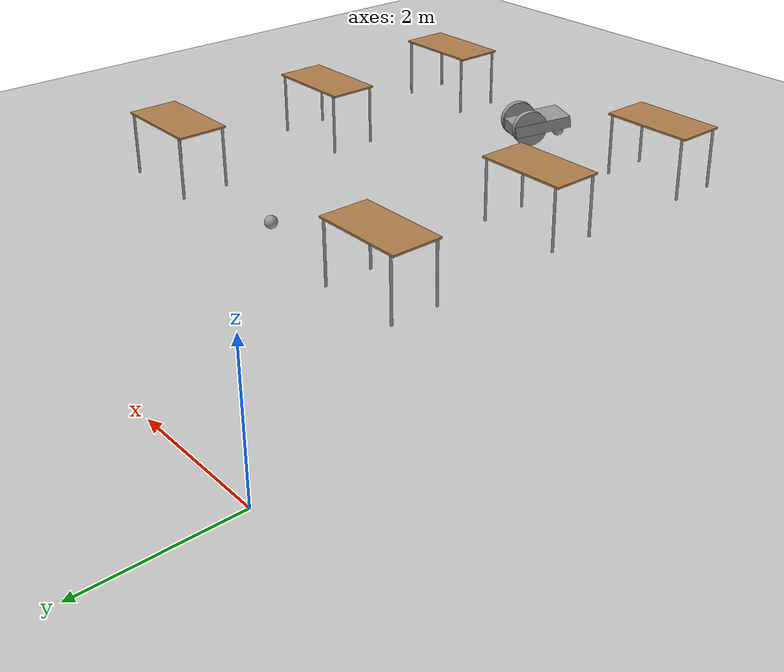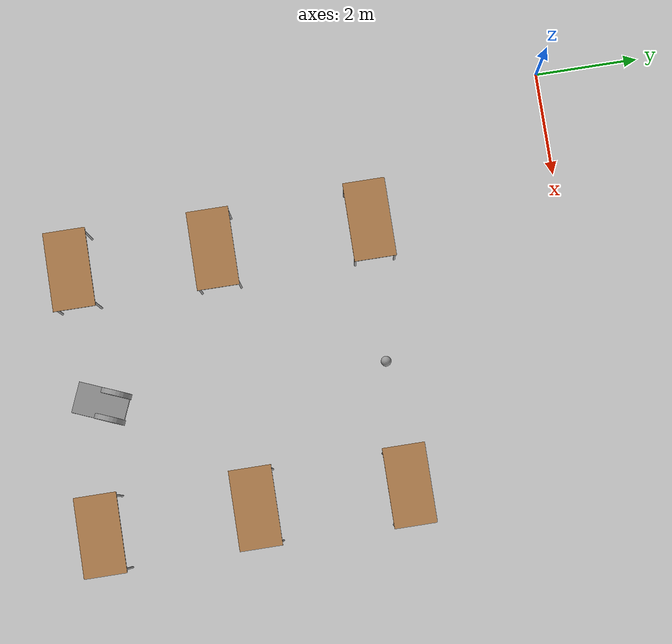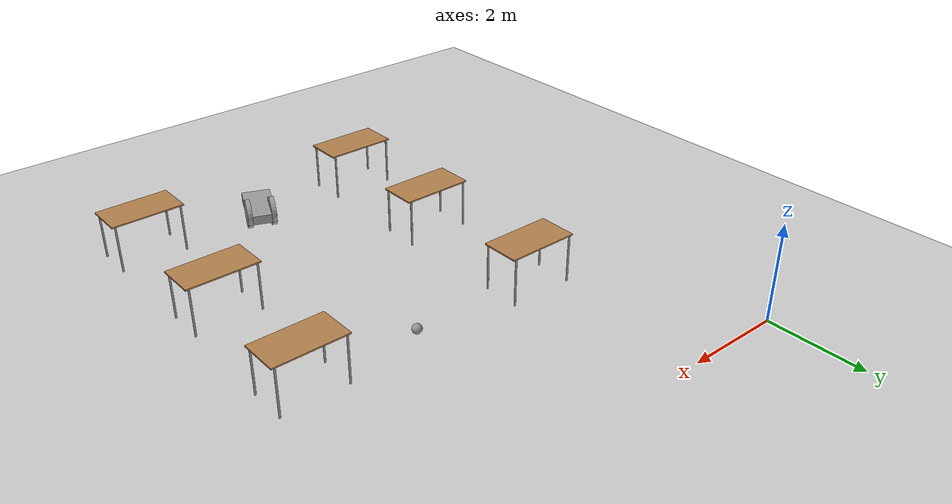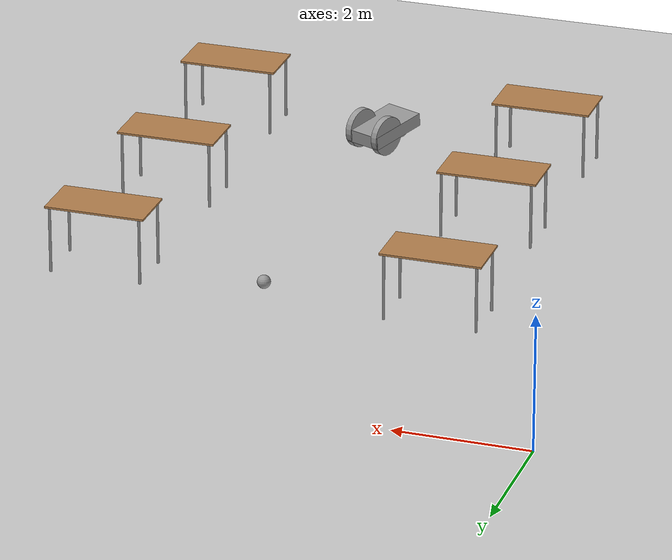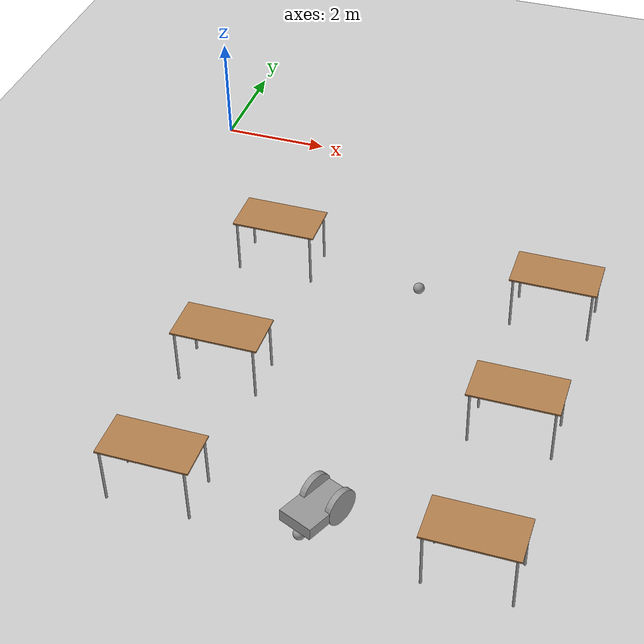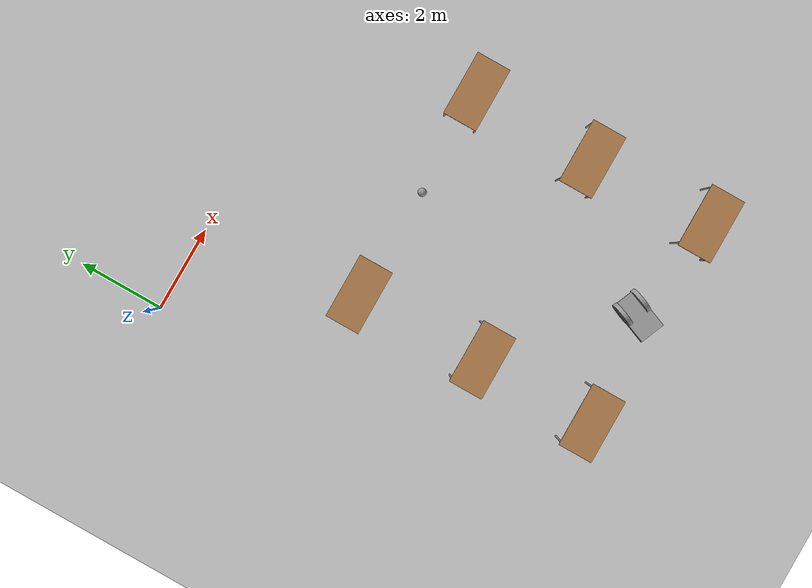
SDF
<sdf version="1.6">
 <world name="default">
  <model name="ground_plane">
   <static>1</static>
   <link name="link">
    <collision name="collision">
     <geometry><plane><normal>0 0 1</normal><size>100 100</size></plane></geometry>
     <surface><friction><ode><mu>100</mu><mu2>50</mu2></ode></friction></surface>
    </collision>
    <visual name="visual">
     <cast_shadows>0</cast_shadows>
     <geometry><plane><normal>0 0 1</normal><size>100 100</size></plane></geometry>
     <material>
      <script><uri>file://media/materials/scripts/gazebo.material</uri><name>Gazebo/Grey</name></script>
     </material>
    </visual>
   </link>
  </model>
  <model name="table_clone_clone_3">
   <static>1</static>
   <link name="link">
    <collision name="surface">
     <pose>0 0 1 0 -0 0</pose>
     <geometry><box><size>1.5 0.8 0.03</size></box></geometry>
     <surface><friction><ode><mu>0.6</mu><mu2>0.6</mu2></ode></friction></surface>
    </collision>
    <visual name="visual1">
     <pose>0 0 1 0 -0 0</pose>
     <geometry><box><size>1.5 0.8 0.03</size></box></geometry>
     <material>
      <script><uri>file://media/materials/scripts/gazebo.material</uri><name>Gazebo/Wood</name></script>
     </material>
    </visual>
    <collision name="front_left_leg">
     <pose>0.68 0.38 0.5 0 -0 0</pose>
     <geometry><cylinder><radius>0.02</radius><length>1</length></cylinder></geometry>
    </collision>
    <visual name="front_left_leg">
     <pose>0.68 0.38 0.5 0 -0 0</pose>
     <geometry><cylinder><radius>0.02</radius><length>1</length></cylinder></geometry>
     <material>
      <script><uri>file://media/materials/scripts/gazebo.material</uri><name>Gazebo/Grey</name></script>
     </material>
    </visual>
    <collision name="front_right_leg">
     <pose>0.68 -0.38 0.5 0 -0 0</pose>
     <geometry><cylinder><radius>0.02</radius><length>1</length></cylinder></geometry>
    </collision>
    <visual name="front_right_leg">
     <pose>0.68 -0.38 0.5 0 -0 0</pose>
     <geometry><cylinder><radius>0.02</radius><length>1</length></cylinder></geometry>
     <material>
      <script><uri>file://media/materials/scripts/gazebo.material</uri><name>Gazebo/Grey</name></script>
     </material>
    </visual>
    <collision name="back_right_leg">
     <pose>-0.68 -0.38 0.5 0 -0 0</pose>
     <geometry><cylinder><radius>0.02</radius><length>1</length></cylinder></geometry>
    </collision>
    <visual name="back_right_leg">
     <pose>-0.68 -0.38 0.5 0 -0 0</pose>
     <geometry><cylinder><radius>0.02</radius><length>1</length></cylinder></geometry>
     <material>
      <script><uri>file://media/materials/scripts/gazebo.material</uri><name>Gazebo/Grey</name></script>
     </material>
    </visual>
    <collision name="back_left_leg">
     <pose>-0.68 0.38 0.5 0 -0 0</pose>
     <geometry><cylinder><radius>0.02</radius><length>1</length></cylinder></geometry>
    </collision>
    <visual name="back_left_leg">
     <pose>-0.68 0.38 0.5 0 -0 0</pose>
     <geometry><cylinder><radius>0.02</radius><length>1</length></cylinder></geometry>
     <material>
      <script><uri>file://media/materials/scripts/gazebo.material</uri><name>Gazebo/Grey</name></script>
     </material>
    </visual>
   </link>
   <pose>2.5522 -9.40203 0 0 -0 0</pose>
  </model>
  <model name="table_clone_clone_4">
   <static>1</static>
   <link name="link">
    <collision name="surface">
     <pose>0 0 1 0 -0 0</pose>
     <geometry><box><size>1.5 0.8 0.03</size></box></geometry>
     <surface><friction><ode><mu>0.6</mu><mu2>0.6</mu2></ode></friction></surface>
    </collision>
    <visual name="visual1">
     <pose>0 0 1 0 -0 0</pose>
     <geometry><box><size>1.5 0.8 0.03</size></box></geometry>
     <material>
      <script><uri>file://media/materials/scripts/gazebo.material</uri><name>Gazebo/Wood</name></script>
     </material>
    </visual>
    <collision name="front_left_leg">
     <pose>0.68 0.38 0.5 0 -0 0</pose>
     <geometry><cylinder><radius>0.02</radius><length>1</length></cylinder></geometry>
    </collision>
    <visual name="front_left_leg">
     <pose>0.68 0.38 0.5 0 -0 0</pose>
     <geometry><cylinder><radius>0.02</radius><length>1</length></cylinder></geometry>
     <material>
      <script><uri>file://media/materials/scripts/gazebo.material</uri><name>Gazebo/Grey</name></script>
     </material>
    </visual>
    <collision name="front_right_leg">
     <pose>0.68 -0.38 0.5 0 -0 0</pose>
     <geometry><cylinder><radius>0.02</radius><length>1</length></cylinder></geometry>
    </collision>
    <visual name="front_right_leg">
     <pose>0.68 -0.38 0.5 0 -0 0</pose>
     <geometry><cylinder><radius>0.02</radius><length>1</length></cylinder></geometry>
     <material>
      <script><uri>file://media/materials/scripts/gazebo.material</uri><name>Gazebo/Grey</name></script>
     </material>
    </visual>
    <collision name="back_right_leg">
     <pose>-0.68 -0.38 0.5 0 -0 0</pose>
     <geometry><cylinder><radius>0.02</radius><length>1</length></cylinder></geometry>
    </collision>
    <visual name="back_right_leg">
     <pose>-0.68 -0.38 0.5 0 -0 0</pose>
     <geometry><cylinder><radius>0.02</radius><length>1</length></cylinder></geometry>
     <material>
      <script><uri>file://media/materials/scripts/gazebo.material</uri><name>Gazebo/Grey</name></script>
     </material>
    </visual>
    <collision name="back_left_leg">
     <pose>-0.68 0.38 0.5 0 -0 0</pose>
     <geometry><cylinder><radius>0.02</radius><length>1</length></cylinder></geometry>
    </collision>
    <visual name="back_left_leg">
     <pose>-0.68 0.38 0.5 0 -0 0</pose>
     <geometry><cylinder><radius>0.02</radius><length>1</length></cylinder></geometry>
     <material>
      <script><uri>file://media/materials/scripts/gazebo.material</uri><name>Gazebo/Grey</name></script>
     </material>
    </visual>
   </link>
   <pose>2.57285 -6.68685 0 0 -0 0</pose>
  </model>
  <model name="table_clone_clone_5">
   <static>1</static>
   <link name="link">
    <collision name="surface">
     <pose>0 0 1 0 -0 0</pose>
     <geometry><box><size>1.5 0.8 0.03</size></box></geometry>
     <surface><friction><ode><mu>0.6</mu><mu2>0.6</mu2></ode></friction></surface>
    </collision>
    <visual name="visual1">
     <pose>0 0 1 0 -0 0</pose>
     <geometry><box><size>1.5 0.8 0.03</size></box></geometry>
     <material>
      <script><uri>file://media/materials/scripts/gazebo.material</uri><name>Gazebo/Wood</name></script>
     </material>
    </visual>
    <collision name="front_left_leg">
     <pose>0.68 0.38 0.5 0 -0 0</pose>
     <geometry><cylinder><radius>0.02</radius><length>1</length></cylinder></geometry>
    </collision>
    <visual name="front_left_leg">
     <pose>0.68 0.38 0.5 0 -0 0</pose>
     <geometry><cylinder><radius>0.02</radius><length>1</length></cylinder></geometry>
     <material>
      <script><uri>file://media/materials/scripts/gazebo.material</uri><name>Gazebo/Grey</name></script>
     </material>
    </visual>
    <collision name="front_right_leg">
     <pose>0.68 -0.38 0.5 0 -0 0</pose>
     <geometry><cylinder><radius>0.02</radius><length>1</length></cylinder></geometry>
    </collision>
    <visual name="front_right_leg">
     <pose>0.68 -0.38 0.5 0 -0 0</pose>
     <geometry><cylinder><radius>0.02</radius><length>1</length></cylinder></geometry>
     <material>
      <script><uri>file://media/materials/scripts/gazebo.material</uri><name>Gazebo/Grey</name></script>
     </material>
    </visual>
    <collision name="back_right_leg">
     <pose>-0.68 -0.38 0.5 0 -0 0</pose>
     <geometry><cylinder><radius>0.02</radius><length>1</length></cylinder></geometry>
    </collision>
    <visual name="back_right_leg">
     <pose>-0.68 -0.38 0.5 0 -0 0</pose>
     <geometry><cylinder><radius>0.02</radius><length>1</length></cylinder></geometry>
     <material>
      <script><uri>file://media/materials/scripts/gazebo.material</uri><name>Gazebo/Grey</name></script>
     </material>
    </visual>
    <collision name="back_left_leg">
     <pose>-0.68 0.38 0.5 0 -0 0</pose>
     <geometry><cylinder><radius>0.02</radius><length>1</length></cylinder></geometry>
    </collision>
    <visual name="back_left_leg">
     <pose>-0.68 0.38 0.5 0 -0 0</pose>
     <geometry><cylinder><radius>0.02</radius><length>1</length></cylinder></geometry>
     <material>
      <script><uri>file://media/materials/scripts/gazebo.material</uri><name>Gazebo/Grey</name></script>
     </material>
    </visual>
   </link>
   <pose>2.48664 -3.69437 0 0 -0 0</pose>
  </model>
  <model name="table_clone_clone_6">
   <static>1</static>
   <link name="link">
    <collision name="surface">
     <pose>0 0 1 0 -0 0</pose>
     <geometry><box><size>1.5 0.8 0.03</size></box></geometry>
     <surface><friction><ode><mu>0.6</mu><mu2>0.6</mu2></ode></friction></surface>
    </collision>
    <visual name="visual1">
     <pose>0 0 1 0 -0 0</pose>
     <geometry><box><size>1.5 0.8 0.03</size></box></geometry>
     <material>
      <script><uri>file://media/materials/scripts/gazebo.material</uri><name>Gazebo/Wood</name></script>
     </material>
    </visual>
    <collision name="front_left_leg">
     <pose>0.68 0.38 0.5 0 -0 0</pose>
     <geometry><cylinder><radius>0.02</radius><length>1</length></cylinder></geometry>
    </collision>
    <visual name="front_left_leg">
     <pose>0.68 0.38 0.5 0 -0 0</pose>
     <geometry><cylinder><radius>0.02</radius><length>1</length></cylinder></geometry>
     <material>
      <script><uri>file://media/materials/scripts/gazebo.material</uri><name>Gazebo/Grey</name></script>
     </material>
    </visual>
    <collision name="front_right_leg">
     <pose>0.68 -0.38 0.5 0 -0 0</pose>
     <geometry><cylinder><radius>0.02</radius><length>1</length></cylinder></geometry>
    </collision>
    <visual name="front_right_leg">
     <pose>0.68 -0.38 0.5 0 -0 0</pose>
     <geometry><cylinder><radius>0.02</radius><length>1</length></cylinder></geometry>
     <material>
      <script><uri>file://media/materials/scripts/gazebo.material</uri><name>Gazebo/Grey</name></script>
     </material>
    </visual>
    <collision name="back_right_leg">
     <pose>-0.68 -0.38 0.5 0 -0 0</pose>
     <geometry><cylinder><radius>0.02</radius><length>1</length></cylinder></geometry>
    </collision>
    <visual name="back_right_leg">
     <pose>-0.68 -0.38 0.5 0 -0 0</pose>
     <geometry><cylinder><radius>0.02</radius><length>1</length></cylinder></geometry>
     <material>
      <script><uri>file://media/materials/scripts/gazebo.material</uri><name>Gazebo/Grey</name></script>
     </material>
    </visual>
    <collision name="back_left_leg">
     <pose>-0.68 0.38 0.5 0 -0 0</pose>
     <geometry><cylinder><radius>0.02</radius><length>1</length></cylinder></geometry>
    </collision>
    <visual name="back_left_leg">
     <pose>-0.68 0.38 0.5 0 -0 0</pose>
     <geometry><cylinder><radius>0.02</radius><length>1</length></cylinder></geometry>
     <material>
      <script><uri>file://media/materials/scripts/gazebo.material</uri><name>Gazebo/Grey</name></script>
     </material>
    </visual>
   </link>
   <pose>7.53448 -9.50782 0 0 -0 0</pose>
  </model>
  <model name="table_clone_clone_7">
   <static>1</static>
   <link name="link">
    <collision name="surface">
     <pose>0 0 1 0 -0 0</pose>
     <geometry><box><size>1.5 0.8 0.03</size></box></geometry>
     <surface><friction><ode><mu>0.6</mu><mu2>0.6</mu2></ode></friction></surface>
    </collision>
    <visual name="visual1">
     <pose>0 0 1 0 -0 0</pose>
     <geometry><box><size>1.5 0.8 0.03</size></box></geometry>
     <material>
      <script><uri>file://media/materials/scripts/gazebo.material</uri><name>Gazebo/Wood</name></script>
     </material>
    </visual>
    <collision name="front_left_leg">
     <pose>0.68 0.38 0.5 0 -0 0</pose>
     <geometry><cylinder><radius>0.02</radius><length>1</length></cylinder></geometry>
    </collision>
    <visual name="front_left_leg">
     <pose>0.68 0.38 0.5 0 -0 0</pose>
     <geometry><cylinder><radius>0.02</radius><length>1</length></cylinder></geometry>
     <material>
      <script><uri>file://media/materials/scripts/gazebo.material</uri><name>Gazebo/Grey</name></script>
     </material>
    </visual>
    <collision name="front_right_leg">
     <pose>0.68 -0.38 0.5 0 -0 0</pose>
     <geometry><cylinder><radius>0.02</radius><length>1</length></cylinder></geometry>
    </collision>
    <visual name="front_right_leg">
     <pose>0.68 -0.38 0.5 0 -0 0</pose>
     <geometry><cylinder><radius>0.02</radius><length>1</length></cylinder></geometry>
     <material>
      <script><uri>file://media/materials/scripts/gazebo.material</uri><name>Gazebo/Grey</name></script>
     </material>
    </visual>
    <collision name="back_right_leg">
     <pose>-0.68 -0.38 0.5 0 -0 0</pose>
     <geometry><cylinder><radius>0.02</radius><length>1</length></cylinder></geometry>
    </collision>
    <visual name="back_right_leg">
     <pose>-0.68 -0.38 0.5 0 -0 0</pose>
     <geometry><cylinder><radius>0.02</radius><length>1</length></cylinder></geometry>
     <material>
      <script><uri>file://media/materials/scripts/gazebo.material</uri><name>Gazebo/Grey</name></script>
     </material>
    </visual>
    <collision name="back_left_leg">
     <pose>-0.68 0.38 0.5 0 -0 0</pose>
     <geometry><cylinder><radius>0.02</radius><length>1</length></cylinder></geometry>
    </collision>
    <visual name="back_left_leg">
     <pose>-0.68 0.38 0.5 0 -0 0</pose>
     <geometry><cylinder><radius>0.02</radius><length>1</length></cylinder></geometry>
     <material>
      <script><uri>file://media/materials/scripts/gazebo.material</uri><name>Gazebo/Grey</name></script>
     </material>
    </visual>
   </link>
   <pose>7.48142 -6.61204 0 0 -0 0</pose>
  </model>
  <model name="table_clone_clone_8">
   <static>1</static>
   <link name="link">
    <collision name="surface">
     <pose>0 0 1 0 -0 0</pose>
     <geometry><box><size>1.5 0.8 0.03</size></box></geometry>
     <surface><friction><ode><mu>0.6</mu><mu2>0.6</mu2></ode></friction></surface>
    </collision>
    <visual name="visual1">
     <pose>0 0 1 0 -0 0</pose>
     <geometry><box><size>1.5 0.8 0.03</size></box></geometry>
     <material>
      <script><uri>file://media/materials/scripts/gazebo.material</uri><name>Gazebo/Wood</name></script>
     </material>
    </visual>
    <collision name="front_left_leg">
     <pose>0.68 0.38 0.5 0 -0 0</pose>
     <geometry><cylinder><radius>0.02</radius><length>1</length></cylinder></geometry>
    </collision>
    <visual name="front_left_leg">
     <pose>0.68 0.38 0.5 0 -0 0</pose>
     <geometry><cylinder><radius>0.02</radius><length>1</length></cylinder></geometry>
     <material>
      <script><uri>file://media/materials/scripts/gazebo.material</uri><name>Gazebo/Grey</name></script>
     </material>
    </visual>
    <collision name="front_right_leg">
     <pose>0.68 -0.38 0.5 0 -0 0</pose>
     <geometry><cylinder><radius>0.02</radius><length>1</length></cylinder></geometry>
    </collision>
    <visual name="front_right_leg">
     <pose>0.68 -0.38 0.5 0 -0 0</pose>
     <geometry><cylinder><radius>0.02</radius><length>1</length></cylinder></geometry>
     <material>
      <script><uri>file://media/materials/scripts/gazebo.material</uri><name>Gazebo/Grey</name></script>
     </material>
    </visual>
    <collision name="back_right_leg">
     <pose>-0.68 -0.38 0.5 0 -0 0</pose>
     <geometry><cylinder><radius>0.02</radius><length>1</length></cylinder></geometry>
    </collision>
    <visual name="back_right_leg">
     <pose>-0.68 -0.38 0.5 0 -0 0</pose>
     <geometry><cylinder><radius>0.02</radius><length>1</length></cylinder></geometry>
     <material>
      <script><uri>file://media/materials/scripts/gazebo.material</uri><name>Gazebo/Grey</name></script>
     </material>
    </visual>
    <collision name="back_left_leg">
     <pose>-0.68 0.38 0.5 0 -0 0</pose>
     <geometry><cylinder><radius>0.02</radius><length>1</length></cylinder></geometry>
    </collision>
    <visual name="back_left_leg">
     <pose>-0.68 0.38 0.5 0 -0 0</pose>
     <geometry><cylinder><radius>0.02</radius><length>1</length></cylinder></geometry>
     <material>
      <script><uri>file://media/materials/scripts/gazebo.material</uri><name>Gazebo/Grey</name></script>
     </material>
    </visual>
   </link>
   <pose>7.51192 -3.73866 0 0 -0 0</pose>
  </model>
  <model name="robot_0">
   <link name="link_0">
    <pose>-0.012293 0.007298 0.050001 0 -0 0</pose>
    <inertial>
     <mass>1</mass>
     <inertia>
      <ixx>0.166667</ixx>
      <ixy>0</ixy>
      <ixz>0</ixz>
      <iyy>0.166667</iyy>
      <iyz>0</iyz>
      <izz>0.166667</izz>
     </inertia>
    </inertial>
    <visual name="visual">
     <geometry><box><size>1 0.6 0.2</size></box></geometry>
     <material>
      <lighting>1</lighting>
      <script><uri>file://media/materials/scripts/gazebo.material</uri><name>Gazebo/Grey</name></script>
      <ambient>0.3 0.3 0.3 1</ambient>
      <diffuse>0.7 0.7 0.7 1</diffuse>
      <specular>0.01 0.01 0.01 1</specular>
      <emissive>0 0 0 1</emissive>
      <shader type="vertex"><normal_map>__default__</normal_map></shader>
     </material>
    </visual>
    <collision name="collision">
     <geometry><box><size>1 0.6 0.2</size></box></geometry>
     <surface>
      <friction>
       <ode><mu>1</mu><mu2>1</mu2><fdir1>0 0 0</fdir1><slip1>0</slip1><slip2>0</slip2></ode>
       <torsional>
        <coefficient>1</coefficient>
        <patch_radius>0</patch_radius>
        <surface_radius>0</surface_radius>
        <use_patch_radius>1</use_patch_radius>
        <ode><slip>0</slip></ode>
       </torsional>
      </friction>
      <bounce><restitution_coefficient>0</restitution_coefficient><threshold>1e+06</threshold></bounce>
      <contact>
       <collide_without_contact>0</collide_without_contact>
       <collide_without_contact_bitmask>1</collide_without_contact_bitmask>
       <collide_bitmask>1</collide_bitmask>
       <ode>
        <soft_cfm>0</soft_cfm>
        <soft_erp>0.2</soft_erp>
        <kp>1e+13</kp>
        <kd>1</kd>
        <max_vel>0.01</max_vel>
        <min_depth>0</min_depth>
       </ode>
       <bullet>
        <split_impulse>1</split_impulse>
        <split_impulse_penetration_threshold>-0.01</split_impulse_penetration_threshold>
        <soft_cfm>0</soft_cfm>
        <soft_erp>0.2</soft_erp>
        <kp>1e+13</kp>
        <kd>1</kd>
       </bullet>
      </contact>
     </surface>
    </collision>
   </link>
   <link name="link_2">
    <pose>0.212296 0.252677 0.069997 1.5707 -0 0</pose>
    <inertial>
     <mass>1</mass>
     <inertia><ixx>0.145833</ixx><ixy>0</ixy><ixz>0</ixz><iyy>0.145833</iyy><iyz>0</iyz><izz>0.125</izz></inertia>
     <pose>0 0 0 1.5707 -0 0</pose>
    </inertial>
    <visual name="visual">
     <geometry><cylinder><radius>0.3</radius><length>0.1</length></cylinder></geometry>
     <material>
      <lighting>1</lighting>
      <script><uri>file://media/materials/scripts/gazebo.material</uri><name>Gazebo/Grey</name></script>
      <ambient>0.3 0.3 0.3 1</ambient>
      <diffuse>0.7 0.7 0.7 1</diffuse>
      <specular>0.01 0.01 0.01 1</specular>
      <emissive>0 0 0 1</emissive>
      <shader type="vertex"><normal_map>__default__</normal_map></shader>
     </material>
    </visual>
    <collision name="collision">
     <geometry><cylinder><radius>0.3</radius><length>0.1</length></cylinder></geometry>
     <surface>
      <friction>
       <ode><mu>1</mu><mu2>1</mu2><fdir1>0 0 0</fdir1><slip1>0</slip1><slip2>0</slip2></ode>
       <torsional>
        <coefficient>1</coefficient>
        <patch_radius>0</patch_radius>
        <surface_radius>0</surface_radius>
        <use_patch_radius>1</use_patch_radius>
        <ode><slip>0</slip></ode>
       </torsional>
      </friction>
      <bounce><restitution_coefficient>0</restitution_coefficient><threshold>1e+06</threshold></bounce>
      <contact>
       <collide_without_contact>0</collide_without_contact>
       <collide_without_contact_bitmask>1</collide_without_contact_bitmask>
       <collide_bitmask>1</collide_bitmask>
       <ode>
        <soft_cfm>0</soft_cfm>
        <soft_erp>0.2</soft_erp>
        <kp>1e+13</kp>
        <kd>1</kd>
        <max_vel>0.01</max_vel>
        <min_depth>0</min_depth>
       </ode>
       <bullet>
        <split_impulse>1</split_impulse>
        <split_impulse_penetration_threshold>-0.01</split_impulse_penetration_threshold>
        <soft_cfm>0</soft_cfm>
        <soft_erp>0.2</soft_erp>
        <kp>1e+13</kp>
        <kd>1</kd>
       </bullet>
      </contact>
     </surface>
    </collision>
   </link>
   <link name="link_2_clone">
    <pose>0.212296 -0.247265 0.070001 1.5707 -0 0</pose>
    <inertial>
     <mass>1</mass>
     <inertia><ixx>0.145833</ixx><ixy>0</ixy><ixz>0</ixz><iyy>0.145833</iyy><iyz>0</iyz><izz>0.125</izz></inertia>
     <pose>0 0 0 1.5707 -0 0</pose>
    </inertial>
    <visual name="visual">
     <geometry><cylinder><radius>0.3</radius><length>0.1</length></cylinder></geometry>
     <material>
      <lighting>1</lighting>
      <script><uri>file://media/materials/scripts/gazebo.material</uri><name>Gazebo/Grey</name></script>
      <ambient>0.3 0.3 0.3 1</ambient>
      <diffuse>0.7 0.7 0.7 1</diffuse>
      <specular>0.01 0.01 0.01 1</specular>
      <emissive>0 0 0 1</emissive>
      <shader type="vertex"><normal_map>__default__</normal_map></shader>
     </material>
    </visual>
    <collision name="collision">
     <geometry><cylinder><radius>0.3</radius><length>0.1</length></cylinder></geometry>
     <surface>
      <friction>
       <ode><mu>1</mu><mu2>1</mu2><fdir1>0 0 0</fdir1><slip1>0</slip1><slip2>0</slip2></ode>
       <torsional>
        <coefficient>1</coefficient>
        <patch_radius>0</patch_radius>
        <surface_radius>0</surface_radius>
        <use_patch_radius>1</use_patch_radius>
        <ode><slip>0</slip></ode>
       </torsional>
      </friction>
      <bounce><restitution_coefficient>0</restitution_coefficient><threshold>1e+06</threshold></bounce>
      <contact>
       <collide_without_contact>0</collide_without_contact>
       <collide_without_contact_bitmask>1</collide_without_contact_bitmask>
       <collide_bitmask>1</collide_bitmask>
       <ode>
        <soft_cfm>0</soft_cfm>
        <soft_erp>0.2</soft_erp>
        <kp>1e+13</kp>
        <kd>1</kd>
        <max_vel>0.01</max_vel>
        <min_depth>0</min_depth>
       </ode>
       <bullet>
        <split_impulse>1</split_impulse>
        <split_impulse_penetration_threshold>-0.01</split_impulse_penetration_threshold>
        <soft_cfm>0</soft_cfm>
        <soft_erp>0.2</soft_erp>
        <kp>1e+13</kp>
        <kd>1</kd>
       </bullet>
      </contact>
     </surface>
    </collision>
   </link>
   <link name="link_3">
    <pose>-0.412293 -0.012702 -0.189999 0 -0 0</pose>
    <inertial>
     <mass>1</mass>
     <inertia><ixx>0.1</ixx><ixy>0</ixy><ixz>0</ixz><iyy>0.1</iyy><iyz>0</iyz><izz>0.1</izz></inertia>
    </inertial>
    <visual name="visual">
     <geometry><sphere><radius>0.1</radius></sphere></geometry>
     <material>
      <lighting>1</lighting>
      <script><uri>file://media/materials/scripts/gazebo.material</uri><name>Gazebo/Grey</name></script>
      <ambient>0.3 0.3 0.3 1</ambient>
      <diffuse>0.7 0.7 0.7 1</diffuse>
      <specular>0.01 0.01 0.01 1</specular>
      <emissive>0 0 0 1</emissive>
      <shader type="vertex"><normal_map>__default__</normal_map></shader>
     </material>
    </visual>
    <collision name="collision">
     <geometry><sphere><radius>0.1</radius></sphere></geometry>
     <surface>
      <friction>
       <ode><mu>1</mu><mu2>1</mu2><fdir1>0 0 0</fdir1><slip1>0</slip1><slip2>0</slip2></ode>
       <torsional>
        <coefficient>1</coefficient>
        <patch_radius>0</patch_radius>
        <surface_radius>0</surface_radius>
        <use_patch_radius>1</use_patch_radius>
        <ode><slip>0</slip></ode>
       </torsional>
      </friction>
      <bounce><restitution_coefficient>0</restitution_coefficient><threshold>1e+06</threshold></bounce>
      <contact>
       <collide_without_contact>0</collide_without_contact>
       <collide_without_contact_bitmask>1</collide_without_contact_bitmask>
       <collide_bitmask>1</collide_bitmask>
       <ode>
        <soft_cfm>0</soft_cfm>
        <soft_erp>0.2</soft_erp>
        <kp>1e+13</kp>
        <kd>1</kd>
        <max_vel>0.01</max_vel>
        <min_depth>0</min_depth>
       </ode>
       <bullet>
        <split_impulse>1</split_impulse>
        <split_impulse_penetration_threshold>-0.01</split_impulse_penetration_threshold>
        <soft_cfm>0</soft_cfm>
        <soft_erp>0.2</soft_erp>
        <kp>1e+13</kp>
        <kd>1</kd>
       </bullet>
      </contact>
     </surface>
    </collision>
   </link>
   <joint name="link_0_JOINT_0" type="revolute">
    <parent>link_0</parent>
    <child>link_2</child>
    <axis>
     <xyz>0 0 1</xyz>
     <use_parent_model_frame>0</use_parent_model_frame>
     <limit>
      <lower>-1.79769e+308</lower>
      <upper>1.79769e+308</upper>
      <effort>-1</effort>
      <velocity>-1</velocity>
     </limit>
     <dynamics>
      <spring_reference>0</spring_reference>
      <spring_stiffness>0</spring_stiffness>
      <damping>0</damping>
     </dynamics>
    </axis>
    <physics>
     <ode><limit><cfm>0</cfm><erp>0.2</erp></limit><suspension><cfm>0</cfm><erp>0.2</erp></suspension></ode>
    </physics>
   </joint>
   <joint name="link_0_JOINT_1" type="revolute">
    <parent>link_0</parent>
    <child>link_2_clone</child>
    <axis>
     <xyz>0 0 1</xyz>
     <use_parent_model_frame>0</use_parent_model_frame>
     <limit>
      <lower>-1.79769e+308</lower>
      <upper>1.79769e+308</upper>
      <effort>-1</effort>
      <velocity>-1</velocity>
     </limit>
     <dynamics>
      <spring_reference>0</spring_reference>
      <spring_stiffness>0</spring_stiffness>
      <damping>0</damping>
     </dynamics>
    </axis>
    <physics>
     <ode><limit><cfm>0</cfm><erp>0.2</erp></limit><suspension><cfm>0</cfm><erp>0.2</erp></suspension></ode>
    </physics>
   </joint>
   <joint name="link_0_JOINT_2" type="ball">
    <parent>link_0</parent>
    <child>link_3</child>
    <physics>
     <ode><limit><cfm>0</cfm><erp>0.2</erp></limit><suspension><cfm>0</cfm><erp>0.2</erp></suspension></ode>
    </physics>
   </joint>
   <static>0</static>
   <pose>5.08382 -9.2393 0.250311 1.5e-05 0.094332 1.18082</pose>
  </model>
  <model name="my_ball">
   <link name="link_0">
    <inertial>
     <mass>1</mass>
     <inertia><ixx>0.1</ixx><ixy>0</ixy><ixz>0</ixz><iyy>0.1</iyy><iyz>0</iyz><izz>0.1</izz></inertia>
    </inertial>
    <visual name="visual">
     <geometry><sphere><radius>0.1</radius></sphere></geometry>
     <material>
      <lighting>1</lighting>
      <script><uri>file://media/materials/scripts/gazebo.material</uri><name>Gazebo/Grey</name></script>
      <ambient>1 1 1 1</ambient>
      <diffuse>1 1 1 1</diffuse>
      <specular>1 1 1 1</specular>
      <emissive>1 1 1 1</emissive>
      <shader type="vertex"><normal_map>__default__</normal_map></shader>
     </material>
    </visual>
    <collision name="collision">
     <geometry><sphere><radius>0.1</radius></sphere></geometry>
     <surface>
      <friction>
       <ode><mu>1</mu><mu2>1</mu2><fdir1>0 0 0</fdir1><slip1>0</slip1><slip2>0</slip2></ode>
       <torsional>
        <coefficient>1</coefficient>
        <patch_radius>0</patch_radius>
        <surface_radius>0</surface_radius>
        <use_patch_radius>1</use_patch_radius>
        <ode><slip>0</slip></ode>
       </torsional>
      </friction>
      <bounce><restitution_coefficient>0</restitution_coefficient><threshold>1e+06</threshold></bounce>
      <contact>
       <collide_without_contact>0</collide_without_contact>
       <collide_without_contact_bitmask>1</collide_without_contact_bitmask>
       <collide_bitmask>1</collide_bitmask>
       <ode>
        <soft_cfm>0</soft_cfm>
        <soft_erp>0.2</soft_erp>
        <kp>1e+13</kp>
        <kd>1</kd>
        <max_vel>0.01</max_vel>
        <min_depth>0</min_depth>
       </ode>
       <bullet>
        <split_impulse>1</split_impulse>
        <split_impulse_penetration_threshold>-0.01</split_impulse_penetration_threshold>
        <soft_cfm>0</soft_cfm>
        <soft_erp>0.2</soft_erp>
        <kp>1e+13</kp>
        <kd>1</kd>
       </bullet>
      </contact>
     </surface>
    </collision>
   </link>
   <static>0</static>
   <pose>5.10306 -3.77914 0.1 0 -0 0</pose>
  </model>
 </world>
</sdf>
